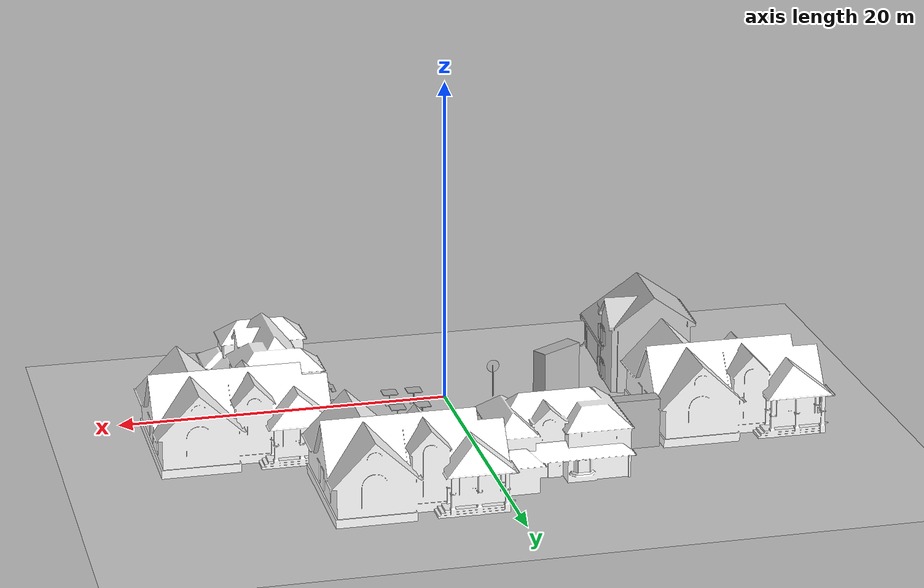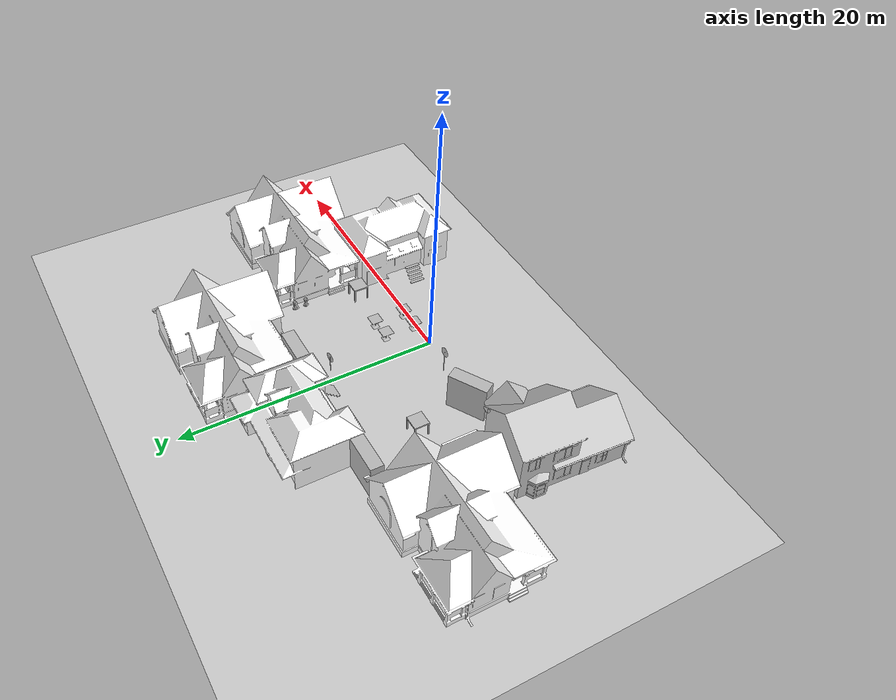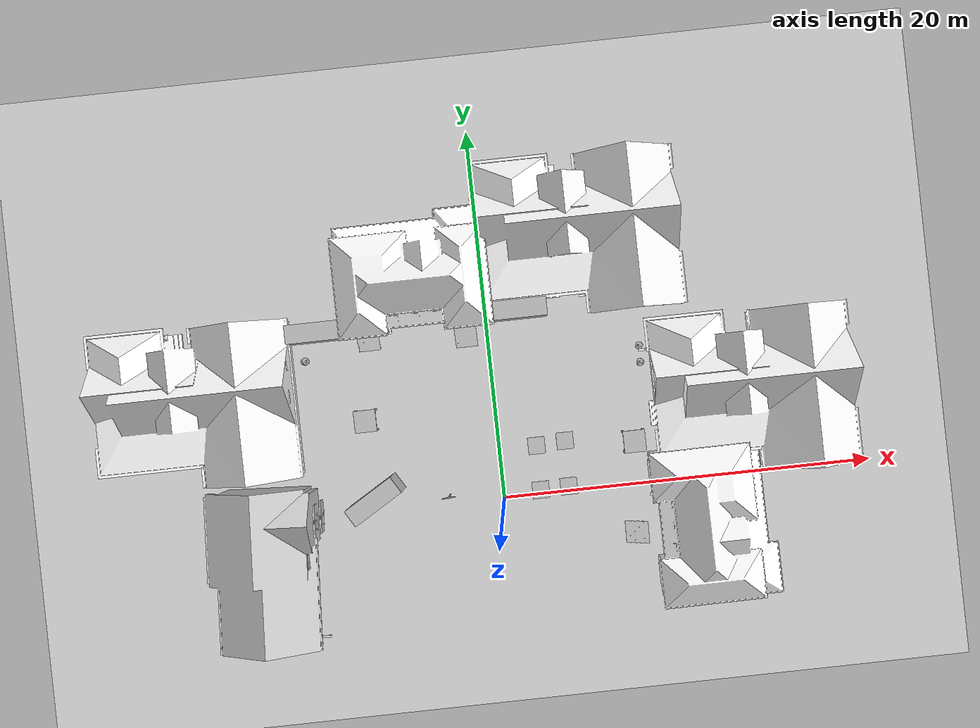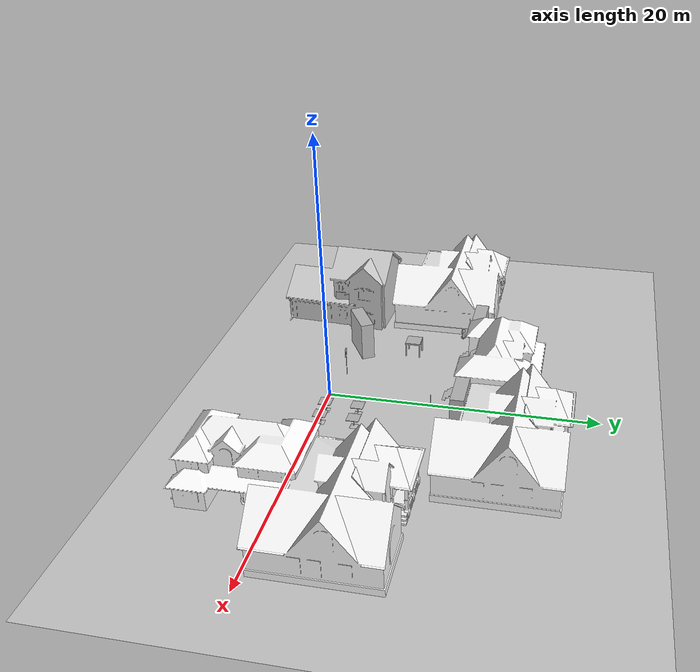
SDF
<sdf version="1.4">
 <world name="default">
  <model name="ground_plane">
   <static>1</static>
   <link name="link">
    <collision name="collision">
     <geometry><plane><normal>0 0 1</normal><size>100 100</size></plane></geometry>
     <surface><friction><ode><mu>100</mu><mu2>50</mu2></ode></friction></surface>
    </collision>
    <visual name="visual">
     <cast_shadows>0</cast_shadows>
     <geometry><plane><normal>0 0 1</normal><size>100 100</size></plane></geometry>
     <material>
      <script><uri>file://media/materials/scripts/gazebo.material</uri><name>Gazebo/Grey</name></script>
     </material>
    </visual>
    <velocity_decay><linear>0</linear><angular>0</angular></velocity_decay>
   </link>
  </model>
  <model name="House 1">
   <static>1</static>
   <link name="link">
    <collision name="collision">
     <geometry><mesh><uri>model://house_1/meshes/house_1.dae</uri></mesh></geometry>
    </collision>
    <visual name="visual">
     <geometry><mesh><uri>model://house_1/meshes/house_1.dae</uri></mesh></geometry>
     <material>
      <script>
       <uri>model://house_1/materials/scripts</uri>
       <uri>model://house_1/materials/textures</uri>
       <name>House_1/Diffuse</name>
      </script>
      <shader type="normal_map_object_space"><normal_map>House_1_Normal.png</normal_map></shader>
     </material>
    </visual>
    <velocity_decay><linear>0</linear><angular>0</angular></velocity_decay>
   </link>
   <pose>-15.588 7.00591 0 0 -0 0</pose>
  </model>
  <model name="House 2">
   <static>1</static>
   <link name="link">
    <collision name="collision">
     <geometry><mesh><uri>model://house_2/meshes/house_2.dae</uri></mesh></geometry>
    </collision>
    <visual name="visual">
     <geometry><mesh><uri>model://house_2/meshes/house_2.dae</uri></mesh></geometry>
     <material>
      <script>
       <uri>model://house_2/materials/scripts</uri>
       <uri>model://house_2/materials/textures</uri>
       <uri>model://house_1/materials/textures</uri>
       <name>House_2/Diffuse</name>
      </script>
      <shader type="normal_map_object_space">
       <normal_map>model://house_1/materials/textures/House_1_Normal.png</normal_map>
      </shader>
     </material>
    </visual>
    <velocity_decay><linear>0</linear><angular>0</angular></velocity_decay>
   </link>
   <pose>-4.25976 12.1297 0 0 -0 0</pose>
  </model>
  <model name="House 2_0">
   <static>1</static>
   <link name="link">
    <collision name="collision">
     <geometry><mesh><uri>model://house_2/meshes/house_2.dae</uri></mesh></geometry>
    </collision>
    <visual name="visual">
     <geometry><mesh><uri>model://house_2/meshes/house_2.dae</uri></mesh></geometry>
     <material>
      <script>
       <uri>model://house_2/materials/scripts</uri>
       <uri>model://house_2/materials/textures</uri>
       <uri>model://house_1/materials/textures</uri>
       <name>House_2/Diffuse</name>
      </script>
      <shader type="normal_map_object_space">
       <normal_map>model://house_1/materials/textures/House_1_Normal.png</normal_map>
      </shader>
     </material>
    </visual>
    <velocity_decay><linear>0</linear><angular>0</angular></velocity_decay>
   </link>
   <pose>10.48 -1.59854 0 0 0 -1.56544</pose>
  </model>
  <model name="House 1_0">
   <static>1</static>
   <link name="link">
    <collision name="collision">
     <geometry><mesh><uri>model://house_1/meshes/house_1.dae</uri></mesh></geometry>
    </collision>
    <visual name="visual">
     <geometry><mesh><uri>model://house_1/meshes/house_1.dae</uri></mesh></geometry>
     <material>
      <script>
       <uri>model://house_1/materials/scripts</uri>
       <uri>model://house_1/materials/textures</uri>
       <name>House_1/Diffuse</name>
      </script>
      <shader type="normal_map_object_space"><normal_map>House_1_Normal.png</normal_map></shader>
     </material>
    </visual>
    <velocity_decay><linear>0</linear><angular>0</angular></velocity_decay>
   </link>
   <pose>13.8451 4.83105 0 0 -0 0</pose>
  </model>
  <model name="brick_box_3x1x3">
   <static>1</static>
   <link name="chassis">
    <pose>0 0 1.5 0 -0 0</pose>
    <collision name="collision"><geometry><box><size>3 1 3</size></box></geometry></collision>
    <visual name="visual">
     <geometry><mesh><uri>model://brick_box_3x1x3/meshes/simple_box.dae</uri><scale>3 1 3</scale></mesh></geometry>
     <material>
      <script>
       <uri>model://brick_box_3x1x3/materials/scripts</uri>
       <uri>model://brick_box_3x1x3/materials/textures</uri>
       <name>BrickBox/Diffuse</name>
      </script>
     </material>
    </visual>
    <velocity_decay><linear>0</linear><angular>0</angular></velocity_decay>
   </link>
   <pose>-9 10 0 0 -0 0</pose>
  </model>
  <model name="brick_box_3x1x3_0">
   <static>1</static>
   <link name="chassis">
    <pose>0 0 1.5 0 -0 0</pose>
    <collision name="collision"><geometry><box><size>3 1 3</size></box></geometry></collision>
    <visual name="visual">
     <geometry><mesh><uri>model://brick_box_3x1x3/meshes/simple_box.dae</uri><scale>3 1 3</scale></mesh></geometry>
     <material>
      <script>
       <uri>model://brick_box_3x1x3/materials/scripts</uri>
       <uri>model://brick_box_3x1x3/materials/textures</uri>
       <name>BrickBox/Diffuse</name>
      </script>
     </material>
    </visual>
    <velocity_decay><linear>0</linear><angular>0</angular></velocity_decay>
   </link>
   <pose>1.80913 10.0905 0 0 -0 0</pose>
  </model>
  <model name="cafe_table">
   <static>1</static>
   <link name="link">
    <collision name="surface">
     <pose>0 0 0.755 0 -0 0</pose>
     <geometry><box><size>0.913 0.913 0.04</size></box></geometry>
    </collision>
    <collision name="column">
     <pose>0 0 0.37 0 -0 0</pose>
     <geometry><box><size>0.042 0.042 0.74</size></box></geometry>
    </collision>
    <collision name="base">
     <pose>0 0 0.02 0 -0 0</pose>
     <geometry><box><size>0.56 0.56 0.04</size></box></geometry>
    </collision>
    <visual name="visual">
     <geometry><mesh><uri>model://cafe_table/meshes/cafe_table.dae</uri></mesh></geometry>
    </visual>
    <velocity_decay><linear>0</linear><angular>0</angular></velocity_decay>
   </link>
   <pose>2.00834 2.69577 0 0 -0 0</pose>
  </model>
  <model name="cafe_table_0">
   <static>1</static>
   <link name="link">
    <collision name="surface">
     <pose>0 0 0.755 0 -0 0</pose>
     <geometry><box><size>0.913 0.913 0.04</size></box></geometry>
    </collision>
    <collision name="column">
     <pose>0 0 0.37 0 -0 0</pose>
     <geometry><box><size>0.042 0.042 0.74</size></box></geometry>
    </collision>
    <collision name="base">
     <pose>0 0 0.02 0 -0 0</pose>
     <geometry><box><size>0.56 0.56 0.04</size></box></geometry>
    </collision>
    <visual name="visual">
     <geometry><mesh><uri>model://cafe_table/meshes/cafe_table.dae</uri></mesh></geometry>
    </visual>
    <velocity_decay><linear>0</linear><angular>0</angular></velocity_decay>
   </link>
   <pose>3.56079 2.79702 0 0 -0 0</pose>
  </model>
  <model name="cafe_table_1">
   <static>1</static>
   <link name="link">
    <collision name="surface">
     <pose>0 0 0.755 0 -0 0</pose>
     <geometry><box><size>0.913 0.913 0.04</size></box></geometry>
    </collision>
    <collision name="column">
     <pose>0 0 0.37 0 -0 0</pose>
     <geometry><box><size>0.042 0.042 0.74</size></box></geometry>
    </collision>
    <collision name="base">
     <pose>0 0 0.02 0 -0 0</pose>
     <geometry><box><size>0.56 0.56 0.04</size></box></geometry>
    </collision>
    <visual name="visual">
     <geometry><mesh><uri>model://cafe_table/meshes/cafe_table.dae</uri></mesh></geometry>
    </visual>
    <velocity_decay><linear>0</linear><angular>0</angular></velocity_decay>
   </link>
   <pose>1.99183 0.293279 0 0 -0 0</pose>
  </model>
  <model name="cafe_table_2">
   <static>1</static>
   <link name="link">
    <collision name="surface">
     <pose>0 0 0.755 0 -0 0</pose>
     <geometry><box><size>0.913 0.913 0.04</size></box></geometry>
    </collision>
    <collision name="column">
     <pose>0 0 0.37 0 -0 0</pose>
     <geometry><box><size>0.042 0.042 0.74</size></box></geometry>
    </collision>
    <collision name="base">
     <pose>0 0 0.02 0 -0 0</pose>
     <geometry><box><size>0.56 0.56 0.04</size></box></geometry>
    </collision>
    <visual name="visual">
     <geometry><mesh><uri>model://cafe_table/meshes/cafe_table.dae</uri></mesh></geometry>
    </visual>
    <velocity_decay><linear>0</linear><angular>0</angular></velocity_decay>
   </link>
   <pose>3.51329 0.339677 0 0 -0 0</pose>
  </model>
  <model name="brick_box_3x1x3_1">
   <static>1</static>
   <link name="chassis">
    <pose>0 0 1.5 0 -0 0</pose>
    <collision name="collision"><geometry><box><size>3 1 3</size></box></geometry></collision>
    <visual name="visual">
     <geometry><mesh><uri>model://brick_box_3x1x3/meshes/simple_box.dae</uri><scale>3 1 3</scale></mesh></geometry>
     <material>
      <script>
       <uri>model://brick_box_3x1x3/materials/scripts</uri>
       <uri>model://brick_box_3x1x3/materials/textures</uri>
       <name>BrickBox/Diffuse</name>
      </script>
     </material>
    </visual>
    <velocity_decay><linear>0</linear><angular>0</angular></velocity_decay>
   </link>
   <pose>-11.0557 -0.910129 0 0 0 -1.5685</pose>
  </model>
  <model name="fire_hydrant">
   <static>1</static>
   <link name="link">
    <collision name="collision">
     <geometry><mesh><uri>model://fire_hydrant/meshes/fire_hydrant.dae</uri></mesh></geometry>
    </collision>
    <visual name="visual">
     <geometry><mesh><uri>model://fire_hydrant/meshes/fire_hydrant.dae</uri></mesh></geometry>
    </visual>
    <velocity_decay><linear>0</linear><angular>0</angular></velocity_decay>
   </link>
   <pose>-10 8.53886 0 0 -0 0</pose>
  </model>
  <model name="nist_elevated_floor_120">
   <static>1</static>
   <link name="nist_elevated_floor_120">
    <collision name="collision">
     <geometry>
      <mesh><uri>model://nist_elevated_floor_120/meshes/nist_elevated_floor_120.dae</uri><scale>1 1 1</scale></mesh>
     </geometry>
    </collision>
    <visual name="visual">
     <geometry>
      <mesh><uri>model://nist_elevated_floor_120/meshes/nist_elevated_floor_120.dae</uri><scale>1 1 1</scale></mesh>
     </geometry>
    </visual>
    <velocity_decay><linear>0</linear><angular>0</angular></velocity_decay>
   </link>
   <pose>7.26946 2.38889 0 0 -0 0</pose>
  </model>
  <model name="nist_stairs_120">
   <static>1</static>
   <link name="nist_stairs_120_link">
    <collision name="collision">
     <geometry>
      <mesh><uri>model://nist_stairs_120/meshes/nist_stairs_120.dae</uri><scale>1 1 1</scale></mesh>
     </geometry>
    </collision>
    <visual name="visual">
     <geometry>
      <mesh><uri>model://nist_stairs_120/meshes/nist_stairs_120.dae</uri><scale>1 1 1</scale></mesh>
     </geometry>
    </visual>
    <velocity_decay><linear>0</linear><angular>0</angular></velocity_decay>
   </link>
   <pose>-6.42239 9.33474 0 0 -0 0</pose>
  </model>
  <model name="nist_stairs_120_0">
   <static>1</static>
   <link name="nist_stairs_120_link">
    <collision name="collision">
     <geometry>
      <mesh><uri>model://nist_stairs_120/meshes/nist_stairs_120.dae</uri><scale>1 1 1</scale></mesh>
     </geometry>
    </collision>
    <visual name="visual">
     <geometry>
      <mesh><uri>model://nist_stairs_120/meshes/nist_stairs_120.dae</uri><scale>1 1 1</scale></mesh>
     </geometry>
    </visual>
    <velocity_decay><linear>0</linear><angular>0</angular></velocity_decay>
   </link>
   <pose>-1.155 8.98679 0 0 -0 0</pose>
  </model>
  <model name="nist_elevated_floor_120_0">
   <static>1</static>
   <link name="nist_elevated_floor_120">
    <collision name="collision">
     <geometry>
      <mesh><uri>model://nist_elevated_floor_120/meshes/nist_elevated_floor_120.dae</uri><scale>1 1 1</scale></mesh>
     </geometry>
    </collision>
    <visual name="visual">
     <geometry>
      <mesh><uri>model://nist_elevated_floor_120/meshes/nist_elevated_floor_120.dae</uri><scale>1 1 1</scale></mesh>
     </geometry>
    </visual>
    <velocity_decay><linear>0</linear><angular>0</angular></velocity_decay>
   </link>
   <pose>-7 5 0 0 -0 0</pose>
  </model>
  <model name="Speed limit">
   <static>1</static>
   <link name="link">
    <collision name="collision">
     <geometry>
      <mesh><scale>10 10 10</scale><uri>model://speed_limit_sign/meshes/speed_limit_sign.dae</uri></mesh>
     </geometry>
    </collision>
    <visual name="visual">
     <geometry>
      <mesh><scale>10 10 10</scale><uri>model://speed_limit_sign/meshes/speed_limit_sign.dae</uri></mesh>
     </geometry>
    </visual>
    <velocity_decay><linear>0</linear><angular>0</angular></velocity_decay>
   </link>
   <pose>1.00418 7.82809 -0.593382 0 0 -3.01341</pose>
  </model>
  <model name="Speed limit_1">
   <static>1</static>
   <link name="link">
    <collision name="collision">
     <geometry>
      <mesh><scale>10 10 10</scale><uri>model://speed_limit_sign/meshes/speed_limit_sign.dae</uri></mesh>
     </geometry>
    </collision>
    <visual name="visual">
     <geometry>
      <mesh><scale>10 10 10</scale><uri>model://speed_limit_sign/meshes/speed_limit_sign.dae</uri></mesh>
     </geometry>
    </visual>
    <velocity_decay><linear>0</linear><angular>0</angular></velocity_decay>
   </link>
   <pose>-2.91121 0.49376 0 0 0 -3.08048</pose>
  </model>
  <model name="fire_hydrant_0">
   <static>1</static>
   <link name="link">
    <collision name="collision">
     <geometry><mesh><uri>model://fire_hydrant/meshes/fire_hydrant.dae</uri></mesh></geometry>
    </collision>
    <visual name="visual">
     <geometry><mesh><uri>model://fire_hydrant/meshes/fire_hydrant.dae</uri></mesh></geometry>
    </visual>
    <velocity_decay><linear>0</linear><angular>0</angular></velocity_decay>
   </link>
   <pose>8.14431 7.4768 0 0 -0 0</pose>
  </model>
  <model name="fire_hydrant_1">
   <static>1</static>
   <link name="link">
    <collision name="collision">
     <geometry><mesh><uri>model://fire_hydrant/meshes/fire_hydrant.dae</uri></mesh></geometry>
    </collision>
    <visual name="visual">
     <geometry><mesh><uri>model://fire_hydrant/meshes/fire_hydrant.dae</uri></mesh></geometry>
    </visual>
    <velocity_decay><linear>0</linear><angular>0</angular></velocity_decay>
   </link>
   <pose>8.11416 6.5757 0 0 -0 0</pose>
  </model>
  <model name="brick_box_3x1x3_2">
   <static>1</static>
   <link name="chassis">
    <pose>0 0 1.5 0 -0 0</pose>
    <collision name="collision"><geometry><box><size>3 1 3</size></box></geometry></collision>
    <visual name="visual">
     <geometry><mesh><uri>model://brick_box_3x1x3/meshes/simple_box.dae</uri><scale>3 1 3</scale></mesh></geometry>
     <material>
      <script>
       <uri>model://brick_box_3x1x3/materials/scripts</uri>
       <uri>model://brick_box_3x1x3/materials/textures</uri>
       <name>BrickBox/Diffuse</name>
      </script>
     </material>
    </visual>
    <velocity_decay><linear>0</linear><angular>0</angular></velocity_decay>
   </link>
   <pose>-6.83187 0.807765 0 0 -0 0.540594</pose>
  </model>
  <model name="nist_stairs_120_1">
   <static>1</static>
   <link name="nist_stairs_120_link">
    <collision name="collision">
     <geometry>
      <mesh><uri>model://nist_stairs_120/meshes/nist_stairs_120.dae</uri><scale>1 1 1</scale></mesh>
     </geometry>
    </collision>
    <visual name="visual">
     <geometry>
      <mesh><uri>model://nist_stairs_120/meshes/nist_stairs_120.dae</uri><scale>1 1 1</scale></mesh>
     </geometry>
    </visual>
    <velocity_decay><linear>0</linear><angular>0</angular></velocity_decay>
   </link>
   <pose>6.93343 -2.53688 -0.01191 0 0 -1.59256</pose>
  </model>
  <model name="House 3_0">
   <static>1</static>
   <link name="link">
    <collision name="collision">
     <geometry><mesh><uri>model://house_3/meshes/house_3.dae</uri></mesh></geometry>
    </collision>
    <visual name="visual">
     <geometry><mesh><uri>model://house_3/meshes/house_3.dae</uri></mesh></geometry>
     <material>
      <script>
       <uri>model://house_3/materials/scripts</uri>
       <uri>model://house_3/materials/textures</uri>
       <uri>model://house_1/materials/textures</uri>
       <name>House_3/Diffuse</name>
      </script>
      <shader type="normal_map_object_space">
       <normal_map>model://house_1/materials/textures/House_1_Normal.png</normal_map>
      </shader>
     </material>
    </visual>
    <velocity_decay><linear>0</linear><angular>0</angular></velocity_decay>
   </link>
   <pose>-12.8694 -2.60482 0 0 0 -1.62761</pose>
  </model>
  <model name="House 1_1">
   <static>1</static>
   <link name="link">
    <collision name="collision">
     <geometry><mesh><uri>model://house_1/meshes/house_1.dae</uri></mesh></geometry>
    </collision>
    <visual name="visual">
     <geometry><mesh><uri>model://house_1/meshes/house_1.dae</uri></mesh></geometry>
     <material>
      <script>
       <uri>model://house_1/materials/scripts</uri>
       <uri>model://house_1/materials/textures</uri>
       <name>House_1/Diffuse</name>
      </script>
      <shader type="normal_map_object_space"><normal_map>House_1_Normal.png</normal_map></shader>
     </material>
    </visual>
    <velocity_decay><linear>0</linear><angular>0</angular></velocity_decay>
   </link>
   <pose>5.51746 14 0 0 -0 0</pose>
  </model>
 </world>
</sdf>
